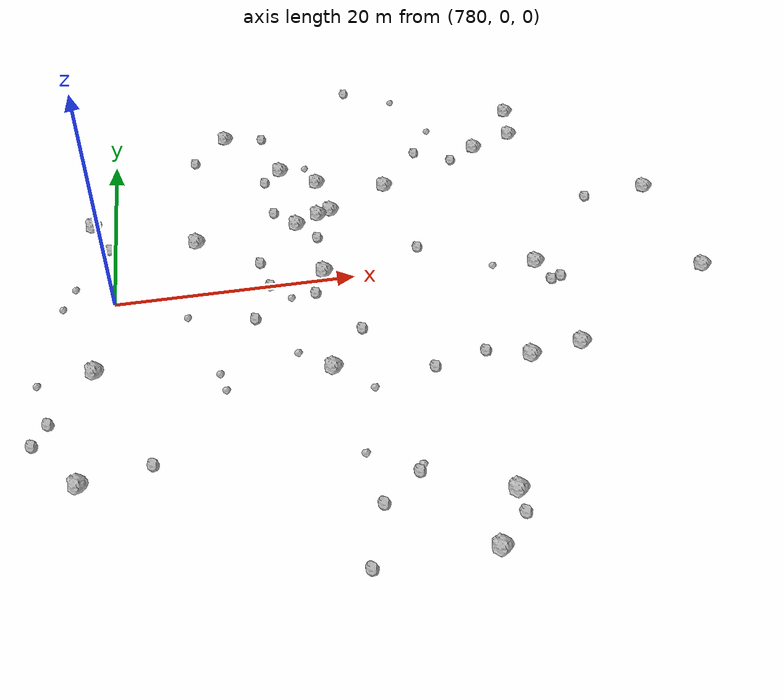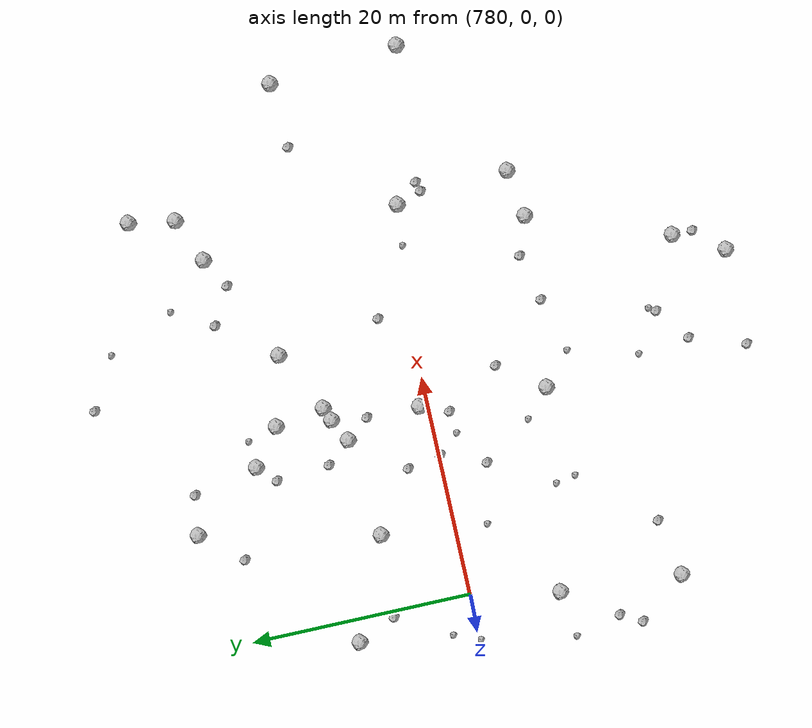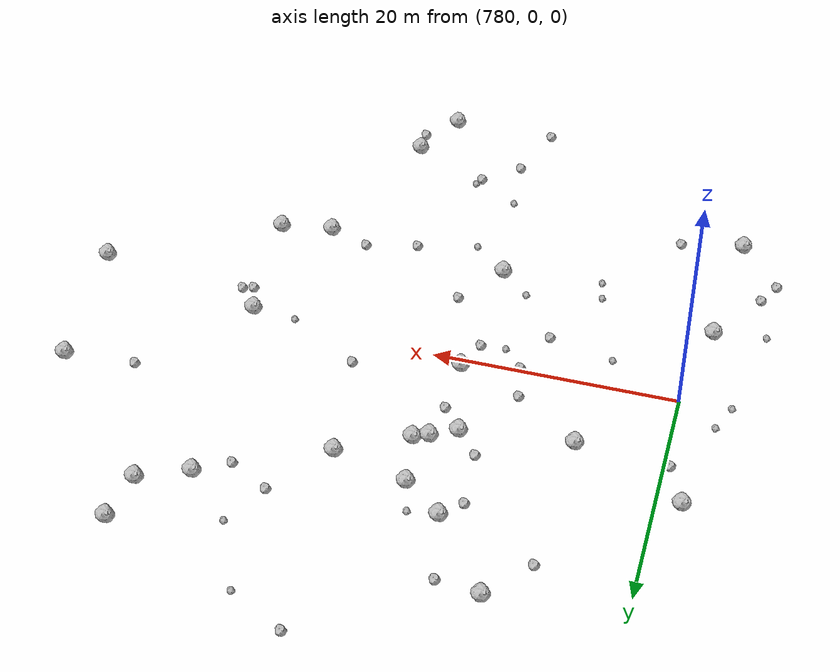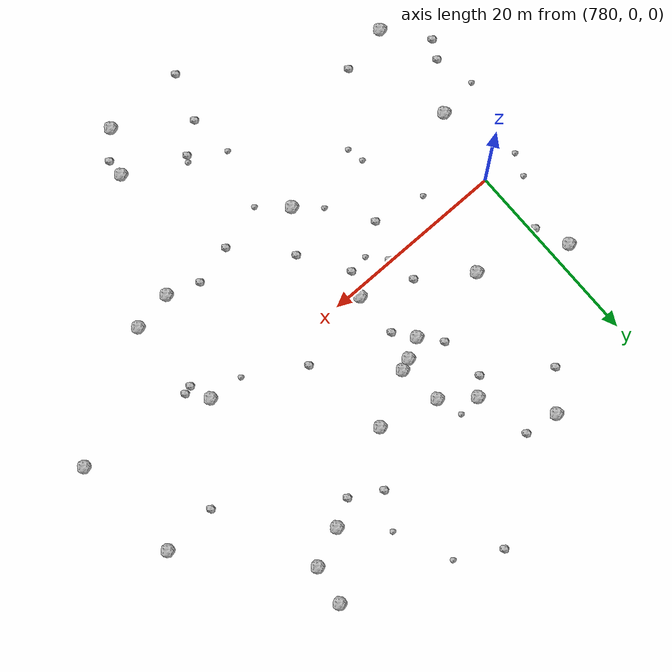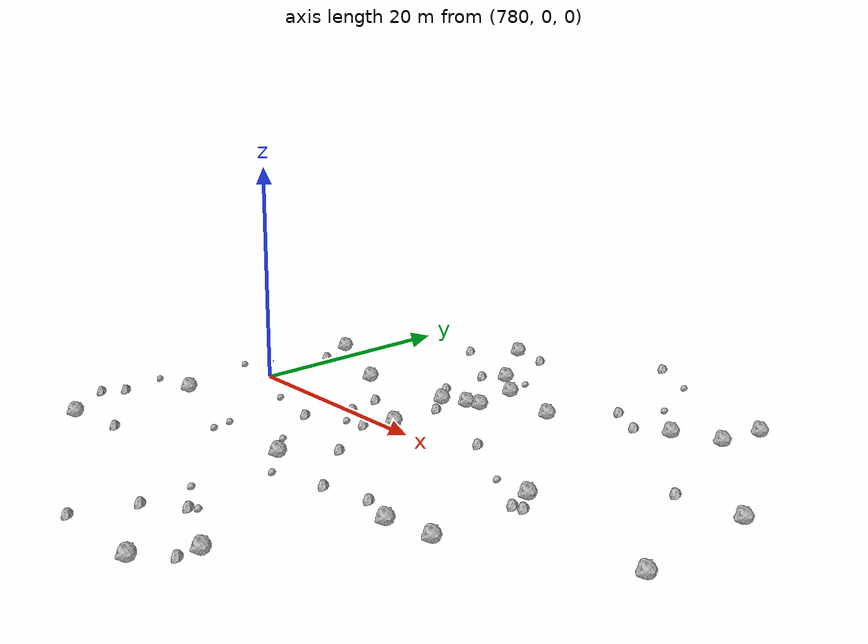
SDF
<sdf version="1.6">
 <world name="default">
  <include><uri>model://sun</uri></include>
  <model name="rock1_20_4">
   <include><uri>model://rock1</uri><pose>819.2986102832995 22.613411743383836 0.5 0 0 0</pose></include>
  </model>
  <model name="rock1_20_5">
   <include><uri>model://rock1</uri><pose>790.6051766486257 22.61604005322959 0.5 0 0 0</pose></include>
  </model>
  <model name="rock1_20_6">
   <include><uri>model://rock1</uri><pose>778.5772938725621 -7.985354235088074 0.5 0 0 0</pose></include>
  </model>
  <model name="rock1_20_7">
   <include><uri>model://rock1</uri><pose>815.6504394849603 -1.2776155813155228 0.5 0 0 0</pose></include>
  </model>
  <model name="rock1_20_8">
   <include><uri>model://rock1</uri><pose>814.577484722141 16.772198876990906 0.5 0 0 0</pose></include>
  </model>
  <model name="rock1_20_9">
   <include><uri>model://rock1</uri><pose>805.2782373306592 -29.135084110595 0.5 0 0 0</pose></include>
  </model>
  <model name="rock1_20_10">
   <include><uri>model://rock1</uri><pose>798.0753006964247 8.698880397332779 0.5 0 0 0</pose></include>
  </model>
  <model name="rock1_20_11">
   <include><uri>model://rock1</uri><pose>816.4688027101723 -11.538791838048674 0.5 0 0 0</pose></include>
  </model>
  <model name="rock1_20_12">
   <include><uri>model://rock1</uri><pose>807.6240449519527 -24.723612214064325 0.5 0 0 0</pose></include>
  </model>
  <model name="rock1_20_13">
   <include><uri>model://rock1</uri><pose>778.0924967324925 10.555276767364795 0.5 0 0 0</pose></include>
  </model>
  <model name="rock1_20_14">
   <include><uri>model://rock1</uri><pose>796.0060778070523 7.619516434228615 0.5 0 0 0</pose></include>
  </model>
  <model name="rock1_20_15">
   <include><uri>model://rock1</uri><pose>798.5949660905856 13.663658535284284 0.5 0 0 0</pose></include>
  </model>
  <model name="rock1_20_16">
   <include><uri>model://rock1</uri><pose>818.5792633772182 18.464298637817578 0.5 0 0 0</pose></include>
  </model>
  <model name="rock1_20_17">
   <include><uri>model://rock1</uri><pose>799.2924795057254 9.190457196529032 0.5 0 0 0</pose></include>
  </model>
  <model name="rock1_20_18">
   <include><uri>model://rock1</uri><pose>787.0546670116814 6.606523412744529 0.5 0 0 0</pose></include>
  </model>
  <model name="rock1_20_19">
   <include><uri>model://rock1</uri><pose>804.7717588340346 12.051353667800285 0.5 0 0 0</pose></include>
  </model>
  <model name="rock1_20_20">
   <include><uri>model://rock1</uri><pose>796.745664025691 -10.765430162377978 0.5 0 0 0</pose></include>
  </model>
  <model name="rock1_20_21">
   <include><uri>model://rock1</uri><pose>777.7177872027374 -18.936418098875986 0.5 0 0 0</pose></include>
  </model>
  <model name="rock1_20_22">
   <include><uri>model://rock1</uri><pose>795.4009551194457 16.19799097734952 0.5 0 0 0</pose></include>
  </model>
  <model name="rock1_20_23">
   <include><uri>model://rock1</uri><pose>797.5560204079154 0.7432475913431205 0.5 0 0 0</pose></include>
  </model>
  <model name="rock1_20_24">
   <include><uri>model://rock1</uri><pose>829.6150496694273 -4.304557480902407 0.5 0 0 0</pose></include>
  </model>
  <model name="rock1_20_25">
   <include><uri>model://rock1</uri><pose>812.1747888523016 -12.205199102557302 0.5 0 0 0</pose></include>
  </model>
  <model name="rock1_20_26">
   <include><uri>model://rock1</uri><pose>828.7121672634939 7.506398298571604 0.5 0 0 0</pose></include>
  </model>
  <model name="rock2_20_0">
   <include><uri>model://rock2</uri><pose>792.8599281774649 -0.11983238915389904 0.3 0 0 0</pose></include>
  </model>
  <model name="rock2_20_1">
   <include><uri>model://rock2</uri><pose>807.5842515498649 -26.591822270282673 0.3 0 0 0</pose></include>
  </model>
  <model name="rock2_20_2">
   <include><uri>model://rock2</uri><pose>796.5807361102011 -29.156979843874776 0.3 0 0 0</pose></include>
  </model>
  <model name="rock2_20_3">
   <include><uri>model://rock2</uri><pose>782.8427804371364 -17.92778815656149 0.3 0 0 0</pose></include>
  </model>
  <model name="rock2_20_4">
   <include><uri>model://rock2</uri><pose>793.7809627587502 14.672986668654772 0.3 0 0 0</pose></include>
  </model>
  <model name="rock2_20_5">
   <include><uri>model://rock2</uri><pose>797.5712021164759 5.567358907743589 0.3 0 0 0</pose></include>
  </model>
  <model name="rock2_20_6">
   <include><uri>model://rock2</uri><pose>808.5806977338481 17.077184940976068 0.3 0 0 0</pose></include>
  </model>
  <model name="rock2_20_7">
   <include><uri>model://rock2</uri><pose>799.6042429279917 -6.720946875361516 0.3 0 0 0</pose></include>
  </model>
  <model name="rock2_20_8">
   <include><uri>model://rock2</uri><pose>804.49299955646 -11.986404026972878 0.3 0 0 0</pose></include>
  </model>
  <model name="rock2_20_9">
   <include><uri>model://rock2</uri><pose>774.2994482094446 -14.645150115805158 0.3 0 0 0</pose></include>
  </model>
  <model name="rock2_20_10">
   <include><uri>model://rock2</uri><pose>775.3288933975201 -12.723549271818925 0.3 0 0 0</pose></include>
  </model>
  <model name="rock2_20_11">
   <include><uri>model://rock2</uri><pose>806.0046662410242 2.6571813726939837 0.3 0 0 0</pose></include>
  </model>
  <model name="rock2_20_12">
   <include><uri>model://rock2</uri><pose>798.2688758202985 -24.173774498900194 0.3 0 0 0</pose></include>
  </model>
  <model name="rock2_20_13">
   <include><uri>model://rock2</uri><pose>816.353326676852 -3.5646360662315715 0.3 0 0 0</pose></include>
  </model>
  <model name="rock2_20_14">
   <include><uri>model://rock2</uri><pose>794.1513141778302 9.807654203931769 0.3 0 0 0</pose></include>
  </model>
  <model name="rock2_20_15">
   <include><uri>model://rock2</uri><pose>801.2357287717302 -21.85906509342137 0.3 0 0 0</pose></include>
  </model>
  <model name="rock2_20_16">
   <include><uri>model://rock2</uri><pose>791.2720141749589 -4.078294701524634 0.3 0 0 0</pose></include>
  </model>
  <model name="rock2_20_17">
   <include><uri>model://rock2</uri><pose>817.2471634401713 -3.3098224853437017 0.3 0 0 0</pose></include>
  </model>
  <model name="rock2_20_18">
   <include><uri>model://rock2</uri><pose>811.8432767497711 15.244765221554552 0.3 0 0 0</pose></include>
  </model>
  <model name="rock2_20_19">
   <include><uri>model://rock2</uri><pose>796.4893710456536 -1.7817043557052976 0.3 0 0 0</pose></include>
  </model>
  <model name="rock2_20_20">
   <include><uri>model://rock2</uri><pose>787.4781383493543 19.036110377625377 0.3 0 0 0</pose></include>
  </model>
  <model name="rock2_20_21">
   <include><uri>model://rock2</uri><pose>822.8013930580798 7.179573089072747 0.3 0 0 0</pose></include>
  </model>
  <model name="rock2_20_22">
   <include><uri>model://rock2</uri><pose>794.1260890609848 22.133420522282762 0.3 0 0 0</pose></include>
  </model>
  <model name="rock2_20_23">
   <include><uri>model://rock2</uri><pose>803.4503374377945 29.290713799633814 0.3 0 0 0</pose></include>
  </model>
  <model name="rock2_20_24">
   <include><uri>model://rock2</uri><pose>808.7582558502352 -10.988405400421495 0.3 0 0 0</pose></include>
  </model>
  <model name="rock2_20_25">
   <include><uri>model://rock2</uri><pose>792.2886634155617 2.939974474056868 0.3 0 0 0</pose></include>
  </model>
  <model name="rock2_20_26">
   <include><uri>model://rock2</uri><pose>779.5381972723037 7.094069889458638 0.3 0 0 0</pose></include>
  </model>
  <model name="rock3_20_0">
   <include><uri>model://rock3</uri><pose>794.2318317008712 -8.571069241950454 0.2 0 0 0</pose></include>
  </model>
  <model name="rock3_20_1">
   <include><uri>model://rock3</uri><pose>776.7725378237811 2.229206080929565 0.2 0 0 0</pose></include>
  </model>
  <model name="rock3_20_2">
   <include><uri>model://rock3</uri><pose>801.607913239045 -21.28581046363452 0.2 0 0 0</pose></include>
  </model>
  <model name="rock3_20_3">
   <include><uri>model://rock3</uri><pose>775.8340855472402 -0.11654214930804585 0.2 0 0 0</pose></include>
  </model>
  <model name="rock3_20_4">
   <include><uri>model://rock3</uri><pose>794.4335992431872 -2.017506754448654 0.2 0 0 0</pose></include>
  </model>
  <model name="rock3_20_5">
   <include><uri>model://rock3</uri><pose>785.8606598271446 -2.9312602184892 0.2 0 0 0</pose></include>
  </model>
  <model name="rock3_20_6">
   <include><uri>model://rock3</uri><pose>788.4105604484033 -11.580879931311792 0.2 0 0 0</pose></include>
  </model>
  <model name="rock3_20_7">
   <include><uri>model://rock3</uri><pose>810.6264491325177 20.70184007762741 0.2 0 0 0</pose></include>
  </model>
  <model name="rock3_20_8">
   <include><uri>model://rock3</uri><pose>788.0628787984886 -9.784657195074963 0.2 0 0 0</pose></include>
  </model>
  <model name="rock3_20_9">
   <include><uri>model://rock3</uri><pose>797.7898675555164 -19.548437668939464 0.2 0 0 0</pose></include>
  </model>
  <model name="rock3_20_10">
   <include><uri>model://rock3</uri><pose>774.2658268659424 -8.594145121140379 0.2 0 0 0</pose></include>
  </model>
  <model name="rock3_20_11">
   <include><uri>model://rock3</uri><pose>807.9868071270621 26.735779194661355 0.2 0 0 0</pose></include>
  </model>
  <model name="rock3_20_12">
   <include><uri>model://rock3</uri><pose>797.7379843478197 16.37718181427011 0.2 0 0 0</pose></include>
  </model>
  <model name="rock3_20_13">
   <include><uri>model://rock3</uri><pose>799.5237680092865 -13.32430497162705 0.2 0 0 0</pose></include>
  </model>
  <model name="rock3_20_14">
   <include><uri>model://rock3</uri><pose>811.9219940004939 -0.9523031900498466 0.2 0 0 0</pose></include>
  </model>
 </world>
</sdf>
